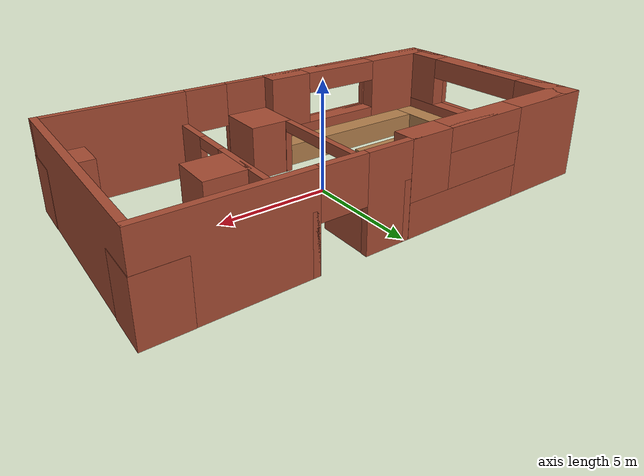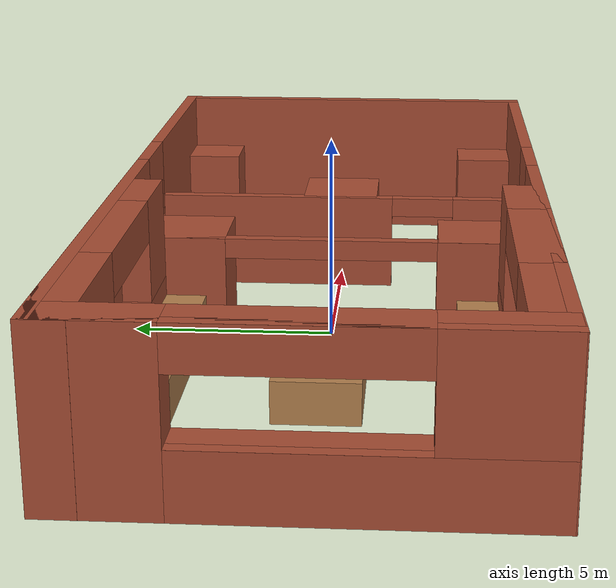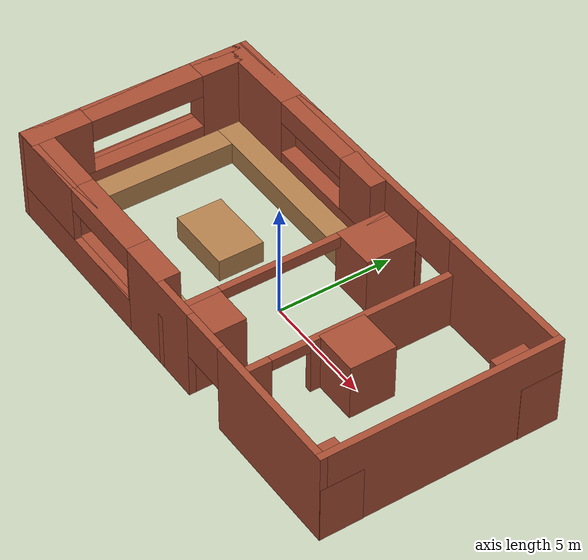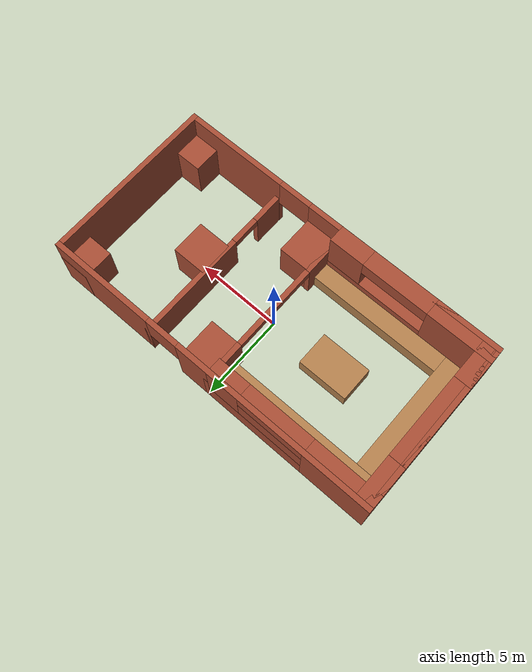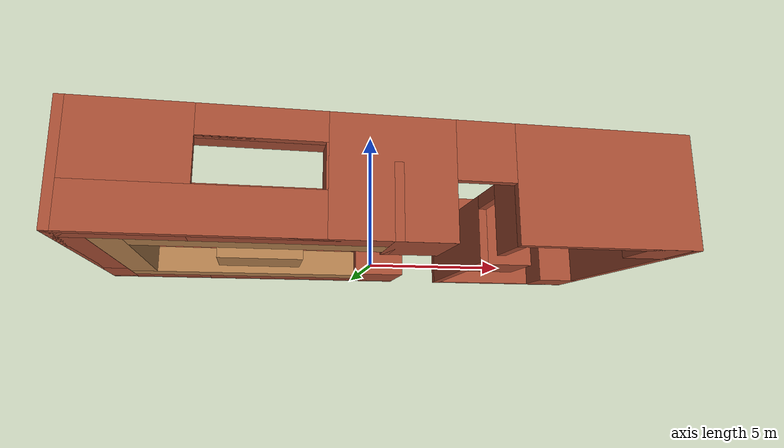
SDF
<?xml version='1.0'?>
<sdf version='1.6'>
  <model name='mbzircbuilding'>
    <pose frame=''>0.004155 0.00491 0 0 -0 0</pose>
    <link name='Wall_100'>
      <pose frame=''>-10.0042 -0.00491 0 0 -0 1.5708</pose>
      <visual name='Wall_100_Visual_0'>
        <pose frame=''>-3.82219 0 2 0 -0 0</pose>
        <geometry>
          <box>
            <size>2.65562 0.3 4</size>
          </box>
        </geometry>
        <material>
          <script>
            <uri>file://media/materials/scripts/gazebo.material</uri>
            <name>Gazebo/Bricks</name>
          </script>
          <ambient>1 1 1 1</ambient>
        </material>
      </visual>
      <collision name='Wall_100_Collision_0'>
        <geometry>
          <box>
            <size>2.65562 0.3 4</size>
          </box>
        </geometry>
        <pose frame=''>-3.82219 0 2 0 -0 0</pose>
      </collision>
      <visual name='Wall_100_Visual_1'>
        <pose frame=''>1.32781 0 0.75 0 -0 0</pose>
        <geometry>
          <box>
            <size>7.64438 0.3 1.5</size>
          </box>
        </geometry>
        <material>
          <script>
            <uri>file://media/materials/scripts/gazebo.material</uri>
            <name>Gazebo/Bricks</name>
          </script>
          <ambient>1 1 1 1</ambient>
        </material>
      </visual>
      <collision name='Wall_100_Collision_1'>
        <geometry>
          <box>
            <size>7.64438 0.3 1.5</size>
          </box>
        </geometry>
        <pose frame=''>1.32781 0 0.75 0 -0 0</pose>
      </collision>
      <visual name='Wall_100_Visual_2'>
        <pose frame=''>3.82781 0 2.75 0 -0 0</pose>
        <geometry>
          <box>
            <size>2.64439 0.3 2.5</size>
          </box>
        </geometry>
        <material>
          <script>
            <uri>file://media/materials/scripts/gazebo.material</uri>
            <name>Gazebo/Bricks</name>
          </script>
          <ambient>1 1 1 1</ambient>
        </material>
      </visual>
      <collision name='Wall_100_Collision_2'>
        <geometry>
          <box>
            <size>2.64439 0.3 2.5</size>
          </box>
        </geometry>
        <pose frame=''>3.82781 0 2.75 0 -0 0</pose>
      </collision>
      <visual name='Wall_100_Visual_3'>
        <pose frame=''>0.005615 0 3.5 0 -0 0</pose>
        <geometry>
          <box>
            <size>5 0.3 1</size>
          </box>
        </geometry>
        <material>
          <script>
            <uri>file://media/materials/scripts/gazebo.material</uri>
            <name>Gazebo/Bricks</name>
          </script>
          <ambient>1 1 1 1</ambient>
        </material>
      </visual>
      <collision name='Wall_100_Collision_3'>
        <geometry>
          <box>
            <size>5 0.3 1</size>
          </box>
        </geometry>
        <pose frame=''>0.005615 0 3.5 0 -0 0</pose>
      </collision>
    </link>
    <link name='Wall_101'>
      <pose frame=''>-0.004155 4.99509 0 0 -0 0</pose>
      <visual name='Wall_101_Visual_0'>
        <pose frame=''>-4.14331 0 2 0 -0 0</pose>
        <geometry>
          <box>
            <size>12.0134 0.3 4</size>
          </box>
        </geometry>
        <material>
          <script>
            <uri>file://media/materials/scripts/gazebo.material</uri>
            <name>Gazebo/Bricks</name>
          </script>
          <ambient>1 1 1 1</ambient>
        </material>
      </visual>
      <collision name='Wall_101_Collision_0'>
        <geometry>
          <box>
            <size>12.0134 0.3 4</size>
          </box>
        </geometry>
        <pose frame=''>-4.14331 0 2 0 -0 0</pose>
      </collision>
      <visual name='Wall_101_Visual_1'>
        <pose frame=''>6.9966 0 2 0 -0 0</pose>
        <geometry>
          <box>
            <size>6.3068 0.3 4</size>
          </box>
        </geometry>
        <material>
          <script>
            <uri>file://media/materials/scripts/gazebo.material</uri>
            <name>Gazebo/Bricks</name>
          </script>
          <ambient>1 1 1 1</ambient>
        </material>
      </visual>
      <collision name='Wall_101_Collision_1'>
        <geometry>
          <box>
            <size>6.3068 0.3 4</size>
          </box>
        </geometry>
        <pose frame=''>6.9966 0 2 0 -0 0</pose>
      </collision>
      <visual name='Wall_101_Visual_2'>
        <pose frame=''>2.85329 0 3 0 -0 0</pose>
        <geometry>
          <box>
            <size>1.97982 0.3 2</size>
          </box>
        </geometry>
        <material>
          <script>
            <uri>file://media/materials/scripts/gazebo.material</uri>
            <name>Gazebo/Bricks</name>
          </script>
          <ambient>1 1 1 1</ambient>
        </material>
      </visual>
      <collision name='Wall_101_Collision_2'>
        <geometry>
          <box>
            <size>1.97982 0.3 2</size>
          </box>
        </geometry>
        <pose frame=''>2.85329 0 3 0 -0 0</pose>
      </collision>
    </link>
    <link name='Wall_102'>
      <collision name='Wall_102_Collision'>
        <geometry>
          <box>
            <size>10.3 0.3 4</size>
          </box>
        </geometry>
        <pose frame=''>0 0 2 0 -0 0</pose>
      </collision>
      <visual name='Wall_102_Visual'>
        <pose frame=''>0 0 2 0 -0 0</pose>
        <geometry>
          <box>
            <size>10.3 0.3 4</size>
          </box>
        </geometry>
        <material>
          <script>
            <uri>file://media/materials/scripts/gazebo.material</uri>
            <name>Gazebo/Bricks</name>
          </script>
          <ambient>1 1 1 1</ambient>
        </material>
      </visual>
      <pose frame=''>9.99584 -0.00491 0 0 0 -1.5708</pose>
    </link>
    <link name='Wall_103'>
      <pose frame=''>-0.004155 -5.00491 0 0 -0 3.14159</pose>
      <visual name='Wall_103_Visual_0'>
        <pose frame=''>-6.99687 0 2 0 -0 0</pose>
        <geometry>
          <box>
            <size>6.30626 0.3 4</size>
          </box>
        </geometry>
        <material>
          <script>
            <uri>file://media/materials/scripts/gazebo.material</uri>
            <name>Gazebo/Bricks</name>
          </script>
          <ambient>1 1 1 1</ambient>
        </material>
      </visual>
      <collision name='Wall_103_Collision_0'>
        <geometry>
          <box>
            <size>6.30626 0.3 4</size>
          </box>
        </geometry>
        <pose frame=''>-6.99687 0 2 0 -0 0</pose>
      </collision>
      <visual name='Wall_103_Visual_1'>
        <pose frame=''>0.164493 0 2 0 -0 0</pose>
        <geometry>
          <box>
            <size>4.04757 0.3 4</size>
          </box>
        </geometry>
        <material>
          <script>
            <uri>file://media/materials/scripts/gazebo.material</uri>
            <name>Gazebo/Bricks</name>
          </script>
          <ambient>1 1 1 1</ambient>
        </material>
      </visual>
      <collision name='Wall_103_Collision_1'>
        <geometry>
          <box>
            <size>4.04757 0.3 4</size>
          </box>
        </geometry>
        <pose frame=''>0.164493 0 2 0 -0 0</pose>
      </collision>
      <visual name='Wall_103_Visual_2'>
        <pose frame=''>6.16914 0 0.75 0 -0 0</pose>
        <geometry>
          <box>
            <size>7.96172 0.3 1.5</size>
          </box>
        </geometry>
        <material>
          <script>
            <uri>file://media/materials/scripts/gazebo.material</uri>
            <name>Gazebo/Bricks</name>
          </script>
          <ambient>1 1 1 1</ambient>
        </material>
      </visual>
      <collision name='Wall_103_Collision_2'>
        <geometry>
          <box>
            <size>7.96172 0.3 1.5</size>
          </box>
        </geometry>
        <pose frame=''>6.16914 0 0.75 0 -0 0</pose>
      </collision>
      <visual name='Wall_103_Visual_3'>
        <pose frame=''>8.16914 0 2.75 0 -0 0</pose>
        <geometry>
          <box>
            <size>3.96172 0.3 2.5</size>
          </box>
        </geometry>
        <material>
          <script>
            <uri>file://media/materials/scripts/gazebo.material</uri>
            <name>Gazebo/Bricks</name>
          </script>
          <ambient>1 1 1 1</ambient>
        </material>
      </visual>
      <collision name='Wall_103_Collision_3'>
        <geometry>
          <box>
            <size>3.96172 0.3 2.5</size>
          </box>
        </geometry>
        <pose frame=''>8.16914 0 2.75 0 -0 0</pose>
      </collision>
      <visual name='Wall_103_Visual_4'>
        <pose frame=''>-2.85152 0 3 0 -0 0</pose>
        <geometry>
          <box>
            <size>1.98445 0.3 2</size>
          </box>
        </geometry>
        <material>
          <script>
            <uri>file://media/materials/scripts/gazebo.material</uri>
            <name>Gazebo/Bricks</name>
          </script>
          <ambient>1 1 1 1</ambient>
        </material>
      </visual>
      <collision name='Wall_103_Collision_4'>
        <geometry>
          <box>
            <size>1.98445 0.3 2</size>
          </box>
        </geometry>
        <pose frame=''>-2.85152 0 3 0 -0 0</pose>
      </collision>
      <visual name='Wall_103_Visual_5'>
        <pose frame=''>4.18828 0 3.5 0 -0 0</pose>
        <geometry>
          <box>
            <size>4 0.3 1</size>
          </box>
        </geometry>
        <material>
          <script>
            <uri>file://media/materials/scripts/gazebo.material</uri>
            <name>Gazebo/Bricks</name>
          </script>
          <ambient>1 1 1 1</ambient>
        </material>
      </visual>
      <collision name='Wall_103_Collision_5'>
        <geometry>
          <box>
            <size>4 0.3 1</size>
          </box>
        </geometry>
        <pose frame=''>4.18828 0 3.5 0 -0 0</pose>
      </collision>
    </link>
    <link name='Wall_105'>
      <collision name='Wall_105_Collision'>
        <geometry>
          <box>
            <size>1.81 1.8 2.5</size>
          </box>
        </geometry>
        <pose frame=''>0 0 1.25 0 -0 0</pose>
      </collision>
      <visual name='Wall_105_Visual'>
        <pose frame=''>0 0 1.25 0 -0 0</pose>
        <geometry>
          <box>
            <size>1.81 1.8 2.5</size>
          </box>
        </geometry>
        <material>
          <script>
            <uri>file://media/materials/scripts/gazebo.material</uri>
            <name>Gazebo/Bricks</name>
          </script>
          <ambient>1 1 1 1</ambient>
        </material>
      </visual>
      <pose frame=''>9.25915 4.24991 0 0 0 -1.5708</pose>
    </link>
    <link name='Wall_109'>
      <collision name='Wall_109_Collision'>
        <geometry>
          <box>
            <size>1.81 1.8 2.5</size>
          </box>
        </geometry>
        <pose frame=''>0 0 1.25 0 -0 0</pose>
      </collision>
      <visual name='Wall_109_Visual'>
        <pose frame=''>0 0 1.25 0 -0 0</pose>
        <geometry>
          <box>
            <size>1.81 1.8 2.5</size>
          </box>
        </geometry>
        <material>
          <script>
            <uri>file://media/materials/scripts/gazebo.material</uri>
            <name>Gazebo/Bricks</name>
          </script>
          <ambient>1 1 1 1</ambient>
        </material>
      </visual>
      <pose frame=''>9.25915 -4.23634 0 0 -0 1.5708</pose>
    </link>
    <link name='Wall_114'>
      <pose frame=''>3.99585 -0.00491 0 0 -0 1.5708</pose>
      <visual name='Wall_114_Visual_0'>
        <pose frame=''>-4.1125 0 1.25 0 -0 0</pose>
        <geometry>
          <box>
            <size>2.075 0.3 2.5</size>
          </box>
        </geometry>
        <material>
          <script>
            <uri>file://media/materials/scripts/gazebo.material</uri>
            <name>Gazebo/Bricks</name>
          </script>
          <ambient>1 1 1 1</ambient>
        </material>
      </visual>
      <collision name='Wall_114_Collision_0'>
        <geometry>
          <box>
            <size>2.075 0.3 2.5</size>
          </box>
        </geometry>
        <pose frame=''>-4.1125 0 1.25 0 -0 0</pose>
      </collision>
      <visual name='Wall_114_Visual_1'>
        <pose frame=''>1.8625 0 1.25 0 -0 0</pose>
        <geometry>
          <box>
            <size>6.575 0.3 2.5</size>
          </box>
        </geometry>
        <material>
          <script>
            <uri>file://media/materials/scripts/gazebo.material</uri>
            <name>Gazebo/Bricks</name>
          </script>
          <ambient>1 1 1 1</ambient>
        </material>
      </visual>
      <collision name='Wall_114_Collision_1'>
        <geometry>
          <box>
            <size>6.575 0.3 2.5</size>
          </box>
        </geometry>
        <pose frame=''>1.8625 0 1.25 0 -0 0</pose>
      </collision>
      <visual name='Wall_114_Visual_2'>
        <pose frame=''>-2.25 0 2.25 0 -0 0</pose>
        <geometry>
          <box>
            <size>1.65 0.3 0.5</size>
          </box>
        </geometry>
        <material>
          <script>
            <uri>file://media/materials/scripts/gazebo.material</uri>
            <name>Gazebo/Bricks</name>
          </script>
          <ambient>1 1 1 1</ambient>
        </material>
      </visual>
      <collision name='Wall_114_Collision_2'>
        <geometry>
          <box>
            <size>1.65 0.3 0.5</size>
          </box>
        </geometry>
        <pose frame=''>-2.25 0 2.25 0 -0 0</pose>
      </collision>
    </link>
    <link name='Wall_116'>
      <pose frame=''>-0.004155 -0.00491 0 0 0 -1.5708</pose>
      <visual name='Wall_116_Visual_0'>
        <pose frame=''>-3.89497 0 1.25 0 -0 0</pose>
        <geometry>
          <box>
            <size>2.51007 0.3 2.5</size>
          </box>
        </geometry>
        <material>
          <script>
            <uri>file://media/materials/scripts/gazebo.material</uri>
            <name>Gazebo/Bricks</name>
          </script>
          <ambient>1 1 1 1</ambient>
        </material>
      </visual>
      <collision name='Wall_116_Collision_0'>
        <geometry>
          <box>
            <size>2.51007 0.3 2.5</size>
          </box>
        </geometry>
        <pose frame=''>-3.89497 0 1.25 0 -0 0</pose>
      </collision>
      <visual name='Wall_116_Visual_1'>
        <pose frame=''>3.88489 0 1.25 0 -0 0</pose>
        <geometry>
          <box>
            <size>2.53023 0.3 2.5</size>
          </box>
        </geometry>
        <material>
          <script>
            <uri>file://media/materials/scripts/gazebo.material</uri>
            <name>Gazebo/Bricks</name>
          </script>
          <ambient>1 1 1 1</ambient>
        </material>
      </visual>
      <collision name='Wall_116_Collision_1'>
        <geometry>
          <box>
            <size>2.53023 0.3 2.5</size>
          </box>
        </geometry>
        <pose frame=''>3.88489 0 1.25 0 -0 0</pose>
      </collision>
      <visual name='Wall_116_Visual_2'>
        <pose frame=''>-0.010078 0 2.25 0 -0 0</pose>
        <geometry>
          <box>
            <size>5.2597 0.3 0.5</size>
          </box>
        </geometry>
        <material>
          <script>
            <uri>file://media/materials/scripts/gazebo.material</uri>
            <name>Gazebo/Bricks</name>
          </script>
          <ambient>1 1 1 1</ambient>
        </material>
      </visual>
      <collision name='Wall_116_Collision_2'>
        <geometry>
          <box>
            <size>5.2597 0.3 0.5</size>
          </box>
        </geometry>
        <pose frame=''>-0.010078 0 2.25 0 -0 0</pose>
      </collision>
    </link>
    <link name='Wall_118'>
      <collision name='Wall_118_Collision'>
        <geometry>
          <box>
            <size>2.5 2 2.5</size>
          </box>
        </geometry>
        <pose frame=''>0 0 1.25 0 -0 0</pose>
      </collision>
      <visual name='Wall_118_Visual'>
        <pose frame=''>0 0 1.25 0 -0 0</pose>
        <geometry>
          <box>
            <size>2.5 2 2.5</size>
          </box>
        </geometry>
        <material>
          <script>
            <uri>file://media/materials/scripts/gazebo.material</uri>
            <name>Gazebo/Bricks</name>
          </script>
          <ambient>1 1 1 1</ambient>
        </material>
      </visual>
      <pose frame=''>0.850845 -3.89791 0 0 0 -1.5708</pose>
    </link>
    <link name='Wall_120'>
      <collision name='Wall_120_Collision'>
        <geometry>
          <box>
            <size>2.5 2 2.5</size>
          </box>
        </geometry>
        <pose frame=''>0 0 1.25 0 -0 0</pose>
      </collision>
      <visual name='Wall_120_Visual'>
        <pose frame=''>0 0 1.25 0 -0 0</pose>
        <geometry>
          <box>
            <size>2.5 2 2.5</size>
          </box>
        </geometry>
        <material>
          <script>
            <uri>file://media/materials/scripts/gazebo.material</uri>
            <name>Gazebo/Bricks</name>
          </script>
          <ambient>1 1 1 1</ambient>
        </material>
      </visual>
      <pose frame=''>0.842282 3.8833 0 0 0 -1.5708</pose>
    </link>
    <link name='Wall_124'>
      <collision name='Wall_124_Collision'>
        <geometry>
          <box>
            <size>2.002 2 2.5</size>
          </box>
        </geometry>
        <pose frame=''>0 0 1.25 0 -0 0</pose>
      </collision>
      <visual name='Wall_124_Visual'>
        <pose frame=''>0 0 1.25 0 -0 0</pose>
        <geometry>
          <box>
            <size>2.002 2 2.5</size>
          </box>
        </geometry>
        <material>
          <script>
            <uri>file://media/materials/scripts/gazebo.material</uri>
            <name>Gazebo/Bricks</name>
          </script>
          <ambient>1 1 1 1</ambient>
        </material>
      </visual>
      <pose frame=''>4.99585 -0.00491 0 0 -0 0</pose>
    </link>
    <link name='Wall_126'>
      <pose frame=''>-5.15916 4.64709 0 0 -0 0</pose>
      <visual name='Wall_126_Visual_0'>
        <pose frame=''>-2.98787 0 2 0 -0 0</pose>
        <geometry>
          <box>
            <size>4.02427 1 4</size>
          </box>
        </geometry>
        <material>
          <script>
            <uri>file://media/materials/scripts/gazebo.material</uri>
            <name>Gazebo/Bricks</name>
          </script>
          <ambient>1 1 1 1</ambient>
        </material>
      </visual>
      <collision name='Wall_126_Collision_0'>
        <geometry>
          <box>
            <size>4.02427 1 4</size>
          </box>
        </geometry>
        <pose frame=''>-2.98787 0 2 0 -0 0</pose>
      </collision>
      <visual name='Wall_126_Visual_1'>
        <pose frame=''>2.01213 0 0.75 0 -0 0</pose>
        <geometry>
          <box>
            <size>5.97573 1 1.5</size>
          </box>
        </geometry>
        <material>
          <script>
            <uri>file://media/materials/scripts/gazebo.material</uri>
            <name>Gazebo/Bricks</name>
          </script>
          <ambient>1 1 1 1</ambient>
        </material>
      </visual>
      <collision name='Wall_126_Collision_1'>
        <geometry>
          <box>
            <size>5.97573 1 1.5</size>
          </box>
        </geometry>
        <pose frame=''>2.01213 0 0.75 0 -0 0</pose>
      </collision>
      <visual name='Wall_126_Visual_2'>
        <pose frame=''>4.01213 0 2.75 0 -0 0</pose>
        <geometry>
          <box>
            <size>1.97573 1 2.5</size>
          </box>
        </geometry>
        <material>
          <script>
            <uri>file://media/materials/scripts/gazebo.material</uri>
            <name>Gazebo/Bricks</name>
          </script>
          <ambient>1 1 1 1</ambient>
        </material>
      </visual>
      <collision name='Wall_126_Collision_2'>
        <geometry>
          <box>
            <size>1.97573 1 2.5</size>
          </box>
        </geometry>
        <pose frame=''>4.01213 0 2.75 0 -0 0</pose>
      </collision>
      <visual name='Wall_126_Visual_3'>
        <pose frame=''>1.02427 0 3.5 0 -0 0</pose>
        <geometry>
          <box>
            <size>4 1 1</size>
          </box>
        </geometry>
        <material>
          <script>
            <uri>file://media/materials/scripts/gazebo.material</uri>
            <name>Gazebo/Bricks</name>
          </script>
          <ambient>1 1 1 1</ambient>
        </material>
      </visual>
      <collision name='Wall_126_Collision_3'>
        <geometry>
          <box>
            <size>4 1 1</size>
          </box>
        </geometry>
        <pose frame=''>1.02427 0 3.5 0 -0 0</pose>
      </collision>
    </link>
    <link name='Wall_128'>
      <pose frame=''>-9.65529 0.000959 0 0 0 -1.5708</pose>
      <visual name='Wall_128_Visual_0'>
        <pose frame=''>-3.81237 0 2 0 -0 0</pose>
        <geometry>
          <box>
            <size>2.62526 1 4</size>
          </box>
        </geometry>
        <material>
          <script>
            <uri>file://media/materials/scripts/gazebo.material</uri>
            <name>Gazebo/Bricks</name>
          </script>
          <ambient>1 1 1 1</ambient>
        </material>
      </visual>
      <collision name='Wall_128_Collision_0'>
        <geometry>
          <box>
            <size>2.62526 1 4</size>
          </box>
        </geometry>
        <pose frame=''>-3.81237 0 2 0 -0 0</pose>
      </collision>
      <visual name='Wall_128_Visual_1'>
        <pose frame=''>1.31263 0 0.75 0 -0 0</pose>
        <geometry>
          <box>
            <size>7.62474 1 1.5</size>
          </box>
        </geometry>
        <material>
          <script>
            <uri>file://media/materials/scripts/gazebo.material</uri>
            <name>Gazebo/Bricks</name>
          </script>
          <ambient>1 1 1 1</ambient>
        </material>
      </visual>
      <collision name='Wall_128_Collision_1'>
        <geometry>
          <box>
            <size>7.62474 1 1.5</size>
          </box>
        </geometry>
        <pose frame=''>1.31263 0 0.75 0 -0 0</pose>
      </collision>
      <visual name='Wall_128_Visual_2'>
        <pose frame=''>3.81263 0 2.75 0 -0 0</pose>
        <geometry>
          <box>
            <size>2.62474 1 2.5</size>
          </box>
        </geometry>
        <material>
          <script>
            <uri>file://media/materials/scripts/gazebo.material</uri>
            <name>Gazebo/Bricks</name>
          </script>
          <ambient>1 1 1 1</ambient>
        </material>
      </visual>
      <collision name='Wall_128_Collision_2'>
        <geometry>
          <box>
            <size>2.62474 1 2.5</size>
          </box>
        </geometry>
        <pose frame=''>3.81263 0 2.75 0 -0 0</pose>
      </collision>
      <visual name='Wall_128_Visual_3'>
        <pose frame=''>0.000255 0 3.5 0 -0 0</pose>
        <geometry>
          <box>
            <size>5 1 1</size>
          </box>
        </geometry>
        <material>
          <script>
            <uri>file://media/materials/scripts/gazebo.material</uri>
            <name>Gazebo/Bricks</name>
          </script>
          <ambient>1 1 1 1</ambient>
        </material>
      </visual>
      <collision name='Wall_128_Collision_3'>
        <geometry>
          <box>
            <size>5 1 1</size>
          </box>
        </geometry>
        <pose frame=''>0.000255 0 3.5 0 -0 0</pose>
      </collision>
    </link>
    <link name='Wall_130'>
      <pose frame=''>-5.15457 -4.65191 0 0 -0 0</pose>
      <visual name='Wall_130_Visual_0'>
        <pose frame=''>-3.05553 0 2 0 -0 0</pose>
        <geometry>
          <box>
            <size>3.88894 1 4</size>
          </box>
        </geometry>
        <material>
          <script>
            <uri>file://media/materials/scripts/gazebo.material</uri>
            <name>Gazebo/Bricks</name>
          </script>
          <ambient>1 1 1 1</ambient>
        </material>
      </visual>
      <collision name='Wall_130_Collision_0'>
        <geometry>
          <box>
            <size>3.88894 1 4</size>
          </box>
        </geometry>
        <pose frame=''>-3.05553 0 2 0 -0 0</pose>
      </collision>
      <visual name='Wall_130_Visual_1'>
        <pose frame=''>1.94447 0 0.75 0 -0 0</pose>
        <geometry>
          <box>
            <size>6.11106 1 1.5</size>
          </box>
        </geometry>
        <material>
          <script>
            <uri>file://media/materials/scripts/gazebo.material</uri>
            <name>Gazebo/Bricks</name>
          </script>
          <ambient>1 1 1 1</ambient>
        </material>
      </visual>
      <collision name='Wall_130_Collision_1'>
        <geometry>
          <box>
            <size>6.11106 1 1.5</size>
          </box>
        </geometry>
        <pose frame=''>1.94447 0 0.75 0 -0 0</pose>
      </collision>
      <visual name='Wall_130_Visual_2'>
        <pose frame=''>3.94447 0 2.75 0 -0 0</pose>
        <geometry>
          <box>
            <size>2.11106 1 2.5</size>
          </box>
        </geometry>
        <material>
          <script>
            <uri>file://media/materials/scripts/gazebo.material</uri>
            <name>Gazebo/Bricks</name>
          </script>
          <ambient>1 1 1 1</ambient>
        </material>
      </visual>
      <collision name='Wall_130_Collision_2'>
        <geometry>
          <box>
            <size>2.11106 1 2.5</size>
          </box>
        </geometry>
        <pose frame=''>3.94447 0 2.75 0 -0 0</pose>
      </collision>
      <visual name='Wall_130_Visual_3'>
        <pose frame=''>0.88894 0 3.5 0 -0 0</pose>
        <geometry>
          <box>
            <size>4 1 1</size>
          </box>
        </geometry>
        <material>
          <script>
            <uri>file://media/materials/scripts/gazebo.material</uri>
            <name>Gazebo/Bricks</name>
          </script>
          <ambient>1 1 1 1</ambient>
        </material>
      </visual>
      <collision name='Wall_130_Collision_3'>
        <geometry>
          <box>
            <size>4 1 1</size>
          </box>
        </geometry>
        <pose frame=''>0.88894 0 3.5 0 -0 0</pose>
      </collision>
    </link>
    <link name='Wall_132'>
      <collision name='Wall_132_Collision'>
        <geometry>
          <box>
            <size>8.995 1.02 1</size>
          </box>
        </geometry>
        <pose frame=''>0 0 0.5 0 -0 0</pose>
      </collision>
      <visual name='Wall_132_Visual'>
        <pose frame=''>0 0 0.5 0 -0 0</pose>
        <geometry>
          <box>
            <size>8.995 1.02 1</size>
          </box>
        </geometry>
        <material>
          <script>
            <uri>file://media/materials/scripts/gazebo.material</uri>
            <name>Gazebo/Wood</name>
          </script>
          <ambient>1 1 1 1</ambient>
        </material>
      </visual>
      <pose frame=''>-4.65383 3.6518 0 0 -0 0</pose>
    </link>
    <link name='Wall_134'>
      <collision name='Wall_134_Collision'>
        <geometry>
          <box>
            <size>7.3 1.02 1</size>
          </box>
        </geometry>
        <pose frame=''>0 0 0.5 0 -0 0</pose>
      </collision>
      <visual name='Wall_134_Visual'>
        <pose frame=''>0 0 0.5 0 -0 0</pose>
        <geometry>
          <box>
            <size>7.3 1.02 1</size>
          </box>
        </geometry>
        <material>
          <script>
            <uri>file://media/materials/scripts/gazebo.material</uri>
            <name>Gazebo/Wood</name>
          </script>
          <ambient>1 1 1 1</ambient>
        </material>
      </visual>
      <pose frame=''>-8.64016 -0.50491 0 0 0 -1.5708</pose>
    </link>
    <link name='Wall_136'>
      <collision name='Wall_136_Collision'>
        <geometry>
          <box>
            <size>7.995 1.02 1</size>
          </box>
        </geometry>
        <pose frame=''>0 0 0.5 0 -0 0</pose>
      </collision>
      <visual name='Wall_136_Visual'>
        <pose frame=''>0 0 0.5 0 -0 0</pose>
        <geometry>
          <box>
            <size>7.995 1.02 1</size>
          </box>
        </geometry>
        <material>
          <script>
            <uri>file://media/materials/scripts/gazebo.material</uri>
            <name>Gazebo/Wood</name>
          </script>
          <ambient>1 1 1 1</ambient>
        </material>
      </visual>
      <pose frame=''>-4.13557 -3.64559 0 0 -0 0</pose>
    </link>
    <link name='Wall_138'>
      <collision name='Wall_138_Collision'>
        <geometry>
          <box>
            <size>3 2 1</size>
          </box>
        </geometry>
        <pose frame=''>0 0 0.5 0 -0 0</pose>
      </collision>
      <visual name='Wall_138_Visual'>
        <pose frame=''>0 0 0.5 0 -0 0</pose>
        <geometry>
          <box>
            <size>3 2 1</size>
          </box>
        </geometry>
        <material>
          <script>
            <uri>file://media/materials/scripts/gazebo.material</uri>
            <name>Gazebo/Wood</name>
          </script>
          <ambient>1 1 1 1</ambient>
        </material>
      </visual>
      <pose frame=''>-4.10416 -0.00491 0 0 -0 0</pose>
    </link>
    <link name='Window_2'>
      <collision name='Window_2_Collision'>
        <geometry>
          <box>
            <size>4 0.17 1.5</size>
          </box>
        </geometry>
        <pose frame=''>0 0 0.75 0 -0 0</pose>
      </collision>
      <visual name='Window_2_Visual'>
        <pose frame=''>0 0 0.75 0 -0 0</pose>
        <geometry>
          <box>
            <size>4 0.17 1.5</size>
          </box>
        </geometry>
        <material>
          <script>
            <uri>file://media/materials/scripts/gazebo.material</uri>
            <name>Gazebo/Grey</name>
          </script>
        </material>
      </visual>
      <pose frame=''>-4.13478 4.95394 1.5 0 -0 0</pose>
    </link>
    <static>1</static>
  </model>
</sdf>
